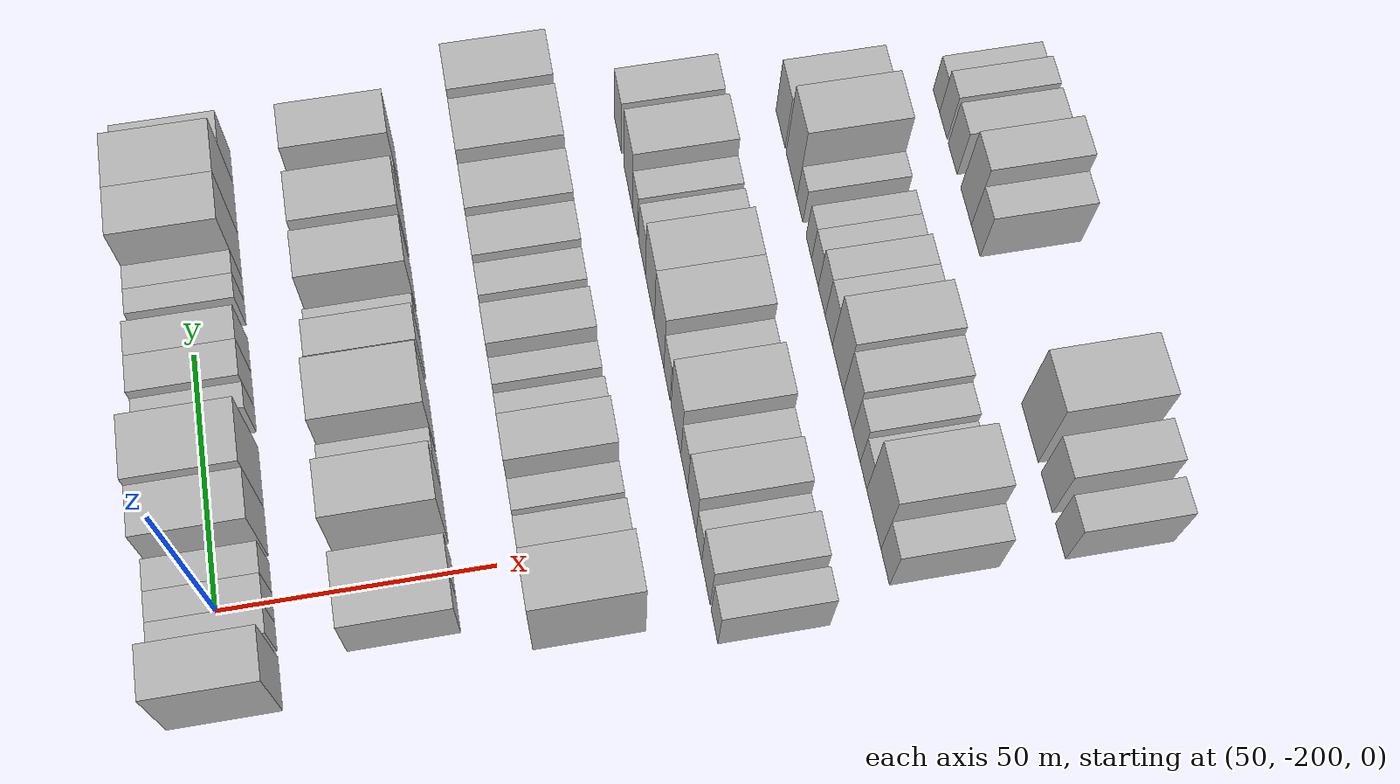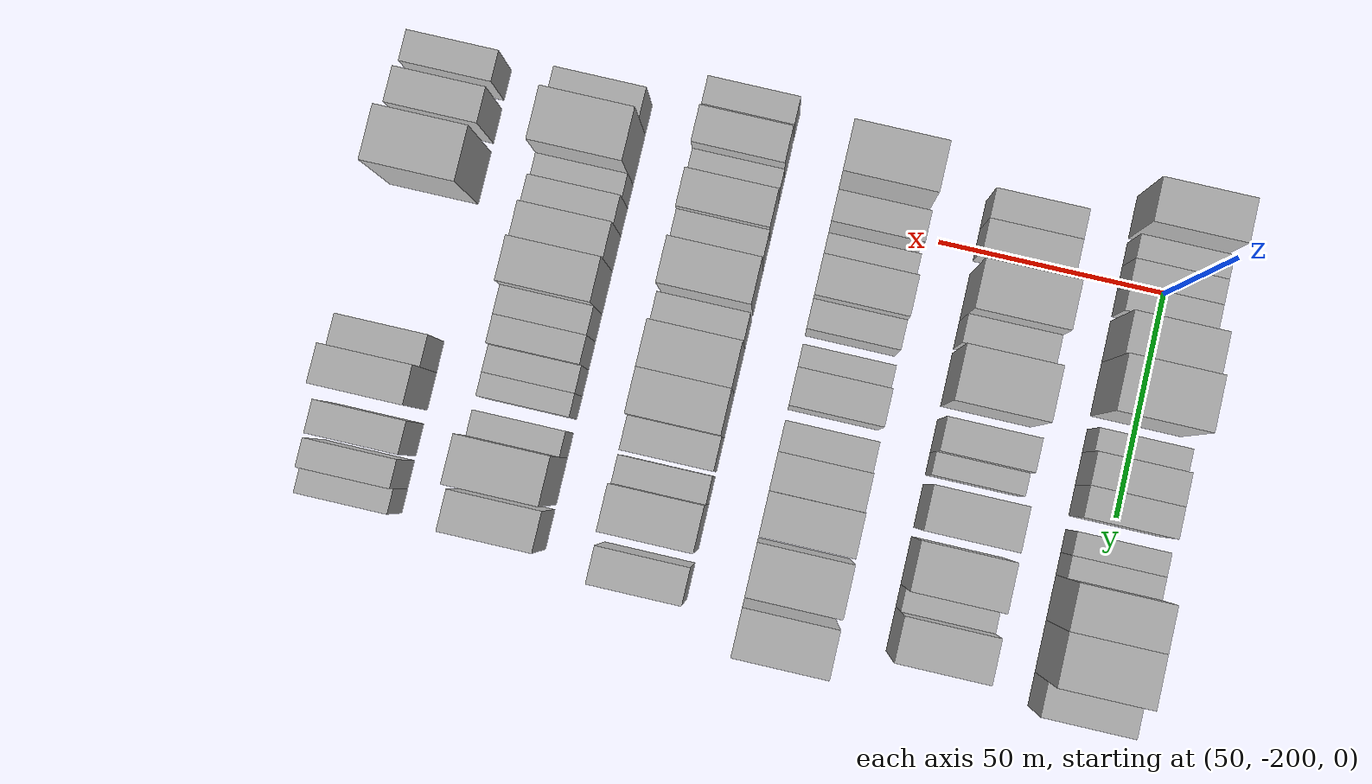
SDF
<sdf version="1.6">
 <world name="default">
  <model name="building_37">
   <static>1</static>
   <pose>50.0000 -214.8943 0 0.000000 0.000000 0.000000</pose>
   <link name="link">
    <pose>0 0 10.50 0 0 0</pose>
    <collision name="collision"><geometry><box><size>20.0000 9.5224 21.0000</size></box></geometry></collision>
    <visual name="visual">
     <cast_shadows>0</cast_shadows>
     <geometry><box><size>20.0000 9.5224 21.0000</size></box></geometry>
     <material>
      <script>
       <uri>model://HANNAS_wall/materials/scripts</uri>
       <uri>model://HANNAS_wall/materials/textures</uri>
       <name>vrc/HANNAS_wall</name>
      </script>
     </material>
    </visual>
   </link>
  </model>
  <model name="building_38">
   <static>1</static>
   <pose>50.0000 -206.4930 0 0.000000 0.000000 0.000000</pose>
   <link name="link">
    <pose>0 0 6.00 0 0 0</pose>
    <collision name="collision"><geometry><box><size>20.0000 5.2804 12.0000</size></box></geometry></collision>
    <visual name="visual">
     <cast_shadows>0</cast_shadows>
     <geometry><box><size>20.0000 5.2804 12.0000</size></box></geometry>
     <material>
      <script>
       <uri>model://HANNAS_wall/materials/scripts</uri>
       <uri>model://HANNAS_wall/materials/textures</uri>
       <name>vrc/HANNAS_wall</name>
      </script>
     </material>
    </visual>
   </link>
  </model>
  <model name="building_39">
   <static>1</static>
   <pose>50.0000 -201.1002 0 0.000000 0.000000 0.000000</pose>
   <link name="link">
    <pose>0 0 6.00 0 0 0</pose>
    <collision name="collision"><geometry><box><size>20.0000 5.5051 12.0000</size></box></geometry></collision>
    <visual name="visual">
     <cast_shadows>0</cast_shadows>
     <geometry><box><size>20.0000 5.5051 12.0000</size></box></geometry>
     <material>
      <script>
       <uri>model://HANNAS_wall/materials/scripts</uri>
       <uri>model://HANNAS_wall/materials/textures</uri>
       <name>vrc/HANNAS_wall</name>
      </script>
     </material>
    </visual>
   </link>
  </model>
  <model name="building_40">
   <static>1</static>
   <pose>50.0000 -195.4446 0 0.000000 0.000000 0.000000</pose>
   <link name="link">
    <pose>0 0 6.00 0 0 0</pose>
    <collision name="collision"><geometry><box><size>20.0000 5.8062 12.0000</size></box></geometry></collision>
    <visual name="visual">
     <cast_shadows>0</cast_shadows>
     <geometry><box><size>20.0000 5.8062 12.0000</size></box></geometry>
     <material>
      <script>
       <uri>model://HANNAS_wall/materials/scripts</uri>
       <uri>model://HANNAS_wall/materials/textures</uri>
       <name>vrc/HANNAS_wall</name>
      </script>
     </material>
    </visual>
   </link>
  </model>
  <model name="building_41">
   <static>1</static>
   <pose>50.0000 -186.9145 0 0.000000 0.000000 0.000000</pose>
   <link name="link">
    <pose>0 0 10.50 0 0 0</pose>
    <collision name="collision"><geometry><box><size>20.0000 9.2540 21.0000</size></box></geometry></collision>
    <visual name="visual">
     <cast_shadows>0</cast_shadows>
     <geometry><box><size>20.0000 9.2540 21.0000</size></box></geometry>
     <material>
      <script>
       <uri>model://HANNAS_wall/materials/scripts</uri>
       <uri>model://HANNAS_wall/materials/textures</uri>
       <name>vrc/HANNAS_wall</name>
      </script>
     </material>
    </visual>
   </link>
  </model>
  <model name="building_42">
   <static>1</static>
   <pose>50.0000 -176.3388 0 0.000000 0.000000 0.000000</pose>
   <link name="link">
    <pose>0 0 12.00 0 0 0</pose>
    <collision name="collision"><geometry><box><size>20.0000 11.8974 24.0000</size></box></geometry></collision>
    <visual name="visual">
     <cast_shadows>0</cast_shadows>
     <geometry><box><size>20.0000 11.8974 24.0000</size></box></geometry>
     <material>
      <script>
       <uri>model://HANNAS_wall/materials/scripts</uri>
       <uri>model://HANNAS_wall/materials/textures</uri>
       <name>vrc/HANNAS_wall</name>
      </script>
     </material>
    </visual>
   </link>
  </model>
  <model name="building_43">
   <static>1</static>
   <pose>50.0000 -164.8560 0 0.000000 0.000000 0.000000</pose>
   <link name="link">
    <pose>0 0 6.00 0 0 0</pose>
    <collision name="collision"><geometry><box><size>20.0000 5.0682 12.0000</size></box></geometry></collision>
    <visual name="visual">
     <cast_shadows>0</cast_shadows>
     <geometry><box><size>20.0000 5.0682 12.0000</size></box></geometry>
     <material>
      <script>
       <uri>model://HANNAS_wall/materials/scripts</uri>
       <uri>model://HANNAS_wall/materials/textures</uri>
       <name>vrc/HANNAS_wall</name>
      </script>
     </material>
    </visual>
   </link>
  </model>
  <model name="building_44">
   <static>1</static>
   <pose>50.0000 -158.7269 0 0.000000 0.000000 0.000000</pose>
   <link name="link">
    <pose>0 0 7.50 0 0 0</pose>
    <collision name="collision"><geometry><box><size>20.0000 7.1901 15.0000</size></box></geometry></collision>
    <visual name="visual">
     <cast_shadows>0</cast_shadows>
     <geometry><box><size>20.0000 7.1901 15.0000</size></box></geometry>
     <material>
      <script>
       <uri>model://HANNAS_wall/materials/scripts</uri>
       <uri>model://HANNAS_wall/materials/textures</uri>
       <name>vrc/HANNAS_wall</name>
      </script>
     </material>
    </visual>
   </link>
  </model>
  <model name="building_45">
   <static>1</static>
   <pose>50.0000 -151.7324 0 0.000000 0.000000 0.000000</pose>
   <link name="link">
    <pose>0 0 7.50 0 0 0</pose>
    <collision name="collision"><geometry><box><size>20.0000 6.7988 15.0000</size></box></geometry></collision>
    <visual name="visual">
     <cast_shadows>0</cast_shadows>
     <geometry><box><size>20.0000 6.7988 15.0000</size></box></geometry>
     <material>
      <script>
       <uri>model://HANNAS_wall/materials/scripts</uri>
       <uri>model://HANNAS_wall/materials/textures</uri>
       <name>vrc/HANNAS_wall</name>
      </script>
     </material>
    </visual>
   </link>
  </model>
  <model name="building_46">
   <static>1</static>
   <pose>50.0000 -142.8013 0 0.000000 0.000000 0.000000</pose>
   <link name="link">
    <pose>0 0 6.00 0 0 0</pose>
    <collision name="collision"><geometry><box><size>20.0000 5.0636 12.0000</size></box></geometry></collision>
    <visual name="visual">
     <cast_shadows>0</cast_shadows>
     <geometry><box><size>20.0000 5.0636 12.0000</size></box></geometry>
     <material>
      <script>
       <uri>model://HANNAS_wall/materials/scripts</uri>
       <uri>model://HANNAS_wall/materials/textures</uri>
       <name>vrc/HANNAS_wall</name>
      </script>
     </material>
    </visual>
   </link>
  </model>
  <model name="building_47">
   <static>1</static>
   <pose>50.0000 -137.8355 0 0.000000 0.000000 0.000000</pose>
   <link name="link">
    <pose>0 0 6.00 0 0 0</pose>
    <collision name="collision"><geometry><box><size>20.0000 4.8679 12.0000</size></box></geometry></collision>
    <visual name="visual">
     <cast_shadows>0</cast_shadows>
     <geometry><box><size>20.0000 4.8679 12.0000</size></box></geometry>
     <material>
      <script>
       <uri>model://HANNAS_wall/materials/scripts</uri>
       <uri>model://HANNAS_wall/materials/textures</uri>
       <name>vrc/HANNAS_wall</name>
      </script>
     </material>
    </visual>
   </link>
  </model>
  <model name="building_48">
   <static>1</static>
   <pose>50.0000 -130.4744 0 0.000000 0.000000 0.000000</pose>
   <link name="link">
    <pose>0 0 12.00 0 0 0</pose>
    <collision name="collision"><geometry><box><size>20.0000 9.8544 24.0000</size></box></geometry></collision>
    <visual name="visual">
     <cast_shadows>0</cast_shadows>
     <geometry><box><size>20.0000 9.8544 24.0000</size></box></geometry>
     <material>
      <script>
       <uri>model://HANNAS_wall/materials/scripts</uri>
       <uri>model://HANNAS_wall/materials/textures</uri>
       <name>vrc/HANNAS_wall</name>
      </script>
     </material>
    </visual>
   </link>
  </model>
  <model name="building_49">
   <static>1</static>
   <pose>50.0000 -119.8723 0 0.000000 0.000000 0.000000</pose>
   <link name="link">
    <pose>0 0 12.00 0 0 0</pose>
    <collision name="collision"><geometry><box><size>20.0000 11.3497 24.0000</size></box></geometry></collision>
    <visual name="visual">
     <cast_shadows>0</cast_shadows>
     <geometry><box><size>20.0000 11.3497 24.0000</size></box></geometry>
     <material>
      <script>
       <uri>model://HANNAS_wall/materials/scripts</uri>
       <uri>model://HANNAS_wall/materials/textures</uri>
       <name>vrc/HANNAS_wall</name>
      </script>
     </material>
    </visual>
   </link>
  </model>
  <model name="building_50">
   <static>1</static>
   <pose>50.0000 -110.5420 0 0.000000 0.000000 0.000000</pose>
   <link name="link">
    <pose>0 0 7.50 0 0 0</pose>
    <collision name="collision"><geometry><box><size>20.0000 7.3109 15.0000</size></box></geometry></collision>
    <visual name="visual">
     <cast_shadows>0</cast_shadows>
     <geometry><box><size>20.0000 7.3109 15.0000</size></box></geometry>
     <material>
      <script>
       <uri>model://HANNAS_wall/materials/scripts</uri>
       <uri>model://HANNAS_wall/materials/textures</uri>
       <name>vrc/HANNAS_wall</name>
      </script>
     </material>
    </visual>
   </link>
  </model>
  <model name="building_157">
   <static>1</static>
   <pose>82.0000 -207.8994 0 0.000000 0.000000 0.000000</pose>
   <link name="link">
    <pose>0 0 7.50 0 0 0</pose>
    <collision name="collision"><geometry><box><size>20.0000 6.5190 15.0000</size></box></geometry></collision>
    <visual name="visual">
     <cast_shadows>0</cast_shadows>
     <geometry><box><size>20.0000 6.5190 15.0000</size></box></geometry>
     <material>
      <script>
       <uri>model://HANNAS_wall/materials/scripts</uri>
       <uri>model://HANNAS_wall/materials/textures</uri>
       <name>vrc/HANNAS_wall</name>
      </script>
     </material>
    </visual>
   </link>
  </model>
  <model name="building_158">
   <static>1</static>
   <pose>82.0000 -201.1374 0 0.000000 0.000000 0.000000</pose>
   <link name="link">
    <pose>0 0 7.50 0 0 0</pose>
    <collision name="collision"><geometry><box><size>20.0000 7.0049 15.0000</size></box></geometry></collision>
    <visual name="visual">
     <cast_shadows>0</cast_shadows>
     <geometry><box><size>20.0000 7.0049 15.0000</size></box></geometry>
     <material>
      <script>
       <uri>model://HANNAS_wall/materials/scripts</uri>
       <uri>model://HANNAS_wall/materials/textures</uri>
       <name>vrc/HANNAS_wall</name>
      </script>
     </material>
    </visual>
   </link>
  </model>
  <model name="building_159">
   <static>1</static>
   <pose>82.0000 -189.3697 0 0.000000 0.000000 0.000000</pose>
   <link name="link">
    <pose>0 0 12.00 0 0 0</pose>
    <collision name="collision"><geometry><box><size>20.0000 10.5306 24.0000</size></box></geometry></collision>
    <visual name="visual">
     <cast_shadows>0</cast_shadows>
     <geometry><box><size>20.0000 10.5306 24.0000</size></box></geometry>
     <material>
      <script>
       <uri>model://HANNAS_wall/materials/scripts</uri>
       <uri>model://HANNAS_wall/materials/textures</uri>
       <name>vrc/HANNAS_wall</name>
      </script>
     </material>
    </visual>
   </link>
  </model>
  <model name="building_160">
   <static>1</static>
   <pose>82.0000 -180.9918 0 0.000000 0.000000 0.000000</pose>
   <link name="link">
    <pose>0 0 7.50 0 0 0</pose>
    <collision name="collision"><geometry><box><size>20.0000 6.2252 15.0000</size></box></geometry></collision>
    <visual name="visual">
     <cast_shadows>0</cast_shadows>
     <geometry><box><size>20.0000 6.2252 15.0000</size></box></geometry>
     <material>
      <script>
       <uri>model://HANNAS_wall/materials/scripts</uri>
       <uri>model://HANNAS_wall/materials/textures</uri>
       <name>vrc/HANNAS_wall</name>
      </script>
     </material>
    </visual>
   </link>
  </model>
  <model name="building_161">
   <static>1</static>
   <pose>82.0000 -171.0031 0 0.000000 0.000000 0.000000</pose>
   <link name="link">
    <pose>0 0 12.00 0 0 0</pose>
    <collision name="collision"><geometry><box><size>20.0000 11.7522 24.0000</size></box></geometry></collision>
    <visual name="visual">
     <cast_shadows>0</cast_shadows>
     <geometry><box><size>20.0000 11.7522 24.0000</size></box></geometry>
     <material>
      <script>
       <uri>model://HANNAS_wall/materials/scripts</uri>
       <uri>model://HANNAS_wall/materials/textures</uri>
       <name>vrc/HANNAS_wall</name>
      </script>
     </material>
    </visual>
   </link>
  </model>
  <model name="building_162">
   <static>1</static>
   <pose>82.0000 -158.5071 0 0.000000 0.000000 0.000000</pose>
   <link name="link">
    <pose>0 0 9.00 0 0 0</pose>
    <collision name="collision"><geometry><box><size>20.0000 7.2398 18.0000</size></box></geometry></collision>
    <visual name="visual">
     <cast_shadows>0</cast_shadows>
     <geometry><box><size>20.0000 7.2398 18.0000</size></box></geometry>
     <material>
      <script>
       <uri>model://HANNAS_wall/materials/scripts</uri>
       <uri>model://HANNAS_wall/materials/textures</uri>
       <name>vrc/HANNAS_wall</name>
      </script>
     </material>
    </visual>
   </link>
  </model>
  <model name="building_163">
   <static>1</static>
   <pose>82.0000 -152.3993 0 0.000000 0.000000 0.000000</pose>
   <link name="link">
    <pose>0 0 6.00 0 0 0</pose>
    <collision name="collision"><geometry><box><size>20.0000 4.9757 12.0000</size></box></geometry></collision>
    <visual name="visual">
     <cast_shadows>0</cast_shadows>
     <geometry><box><size>20.0000 4.9757 12.0000</size></box></geometry>
     <material>
      <script>
       <uri>model://HANNAS_wall/materials/scripts</uri>
       <uri>model://HANNAS_wall/materials/textures</uri>
       <name>vrc/HANNAS_wall</name>
      </script>
     </material>
    </visual>
   </link>
  </model>
  <model name="building_164">
   <static>1</static>
   <pose>82.0000 -143.1555 0 0.000000 0.000000 0.000000</pose>
   <link name="link">
    <pose>0 0 10.50 0 0 0</pose>
    <collision name="collision"><geometry><box><size>20.0000 9.5119 21.0000</size></box></geometry></collision>
    <visual name="visual">
     <cast_shadows>0</cast_shadows>
     <geometry><box><size>20.0000 9.5119 21.0000</size></box></geometry>
     <material>
      <script>
       <uri>model://HANNAS_wall/materials/scripts</uri>
       <uri>model://HANNAS_wall/materials/textures</uri>
       <name>vrc/HANNAS_wall</name>
      </script>
     </material>
    </visual>
   </link>
  </model>
  <model name="building_165">
   <static>1</static>
   <pose>82.0000 -131.1822 0 0.000000 0.000000 0.000000</pose>
   <link name="link">
    <pose>0 0 10.50 0 0 0</pose>
    <collision name="collision"><geometry><box><size>20.0000 10.4346 21.0000</size></box></geometry></collision>
    <visual name="visual">
     <cast_shadows>0</cast_shadows>
     <geometry><box><size>20.0000 10.4346 21.0000</size></box></geometry>
     <material>
      <script>
       <uri>model://HANNAS_wall/materials/scripts</uri>
       <uri>model://HANNAS_wall/materials/textures</uri>
       <name>vrc/HANNAS_wall</name>
      </script>
     </material>
    </visual>
   </link>
  </model>
  <model name="building_166">
   <static>1</static>
   <pose>82.0000 -123.4784 0 0.000000 0.000000 0.000000</pose>
   <link name="link">
    <pose>0 0 6.00 0 0 0</pose>
    <collision name="collision"><geometry><box><size>20.0000 4.9730 12.0000</size></box></geometry></collision>
    <visual name="visual">
     <cast_shadows>0</cast_shadows>
     <geometry><box><size>20.0000 4.9730 12.0000</size></box></geometry>
     <material>
      <script>
       <uri>model://HANNAS_wall/materials/scripts</uri>
       <uri>model://HANNAS_wall/materials/textures</uri>
       <name>vrc/HANNAS_wall</name>
      </script>
     </material>
    </visual>
   </link>
  </model>
  <model name="building_167">
   <static>1</static>
   <pose>82.0000 -116.2083 0 0.000000 0.000000 0.000000</pose>
   <link name="link">
    <pose>0 0 10.50 0 0 0</pose>
    <collision name="collision"><geometry><box><size>20.0000 9.5671 21.0000</size></box></geometry></collision>
    <visual name="visual">
     <cast_shadows>0</cast_shadows>
     <geometry><box><size>20.0000 9.5671 21.0000</size></box></geometry>
     <material>
      <script>
       <uri>model://HANNAS_wall/materials/scripts</uri>
       <uri>model://HANNAS_wall/materials/textures</uri>
       <name>vrc/HANNAS_wall</name>
      </script>
     </material>
    </visual>
   </link>
  </model>
  <model name="building_272">
   <static>1</static>
   <pose>114.0000 -210.8963 0 0.000000 0.000000 0.000000</pose>
   <link name="link">
    <pose>0 0 12.00 0 0 0</pose>
    <collision name="collision"><geometry><box><size>20.0000 10.9202 24.0000</size></box></geometry></collision>
    <visual name="visual">
     <cast_shadows>0</cast_shadows>
     <geometry><box><size>20.0000 10.9202 24.0000</size></box></geometry>
     <material>
      <script>
       <uri>model://HANNAS_wall/materials/scripts</uri>
       <uri>model://HANNAS_wall/materials/textures</uri>
       <name>vrc/HANNAS_wall</name>
      </script>
     </material>
    </visual>
   </link>
  </model>
  <model name="building_273">
   <static>1</static>
   <pose>114.0000 -200.0163 0 0.000000 0.000000 0.000000</pose>
   <link name="link">
    <pose>0 0 7.50 0 0 0</pose>
    <collision name="collision"><geometry><box><size>20.0000 6.8398 15.0000</size></box></geometry></collision>
    <visual name="visual">
     <cast_shadows>0</cast_shadows>
     <geometry><box><size>20.0000 6.8398 15.0000</size></box></geometry>
     <material>
      <script>
       <uri>model://HANNAS_wall/materials/scripts</uri>
       <uri>model://HANNAS_wall/materials/textures</uri>
       <name>vrc/HANNAS_wall</name>
      </script>
     </material>
    </visual>
   </link>
  </model>
  <model name="building_274">
   <static>1</static>
   <pose>114.0000 -191.6245 0 0.000000 0.000000 0.000000</pose>
   <link name="link">
    <pose>0 0 6.00 0 0 0</pose>
    <collision name="collision"><geometry><box><size>20.0000 5.9437 12.0000</size></box></geometry></collision>
    <visual name="visual">
     <cast_shadows>0</cast_shadows>
     <geometry><box><size>20.0000 5.9437 12.0000</size></box></geometry>
     <material>
      <script>
       <uri>model://HANNAS_wall/materials/scripts</uri>
       <uri>model://HANNAS_wall/materials/textures</uri>
       <name>vrc/HANNAS_wall</name>
      </script>
     </material>
    </visual>
   </link>
  </model>
  <model name="building_275">
   <static>1</static>
   <pose>114.0000 -184.2922 0 0.000000 0.000000 0.000000</pose>
   <link name="link">
    <pose>0 0 10.50 0 0 0</pose>
    <collision name="collision"><geometry><box><size>20.0000 8.7209 21.0000</size></box></geometry></collision>
    <visual name="visual">
     <cast_shadows>0</cast_shadows>
     <geometry><box><size>20.0000 8.7209 21.0000</size></box></geometry>
     <material>
      <script>
       <uri>model://HANNAS_wall/materials/scripts</uri>
       <uri>model://HANNAS_wall/materials/textures</uri>
       <name>vrc/HANNAS_wall</name>
      </script>
     </material>
    </visual>
   </link>
  </model>
  <model name="building_276">
   <static>1</static>
   <pose>114.0000 -176.7101 0 0.000000 0.000000 0.000000</pose>
   <link name="link">
    <pose>0 0 7.50 0 0 0</pose>
    <collision name="collision"><geometry><box><size>20.0000 6.4432 15.0000</size></box></geometry></collision>
    <visual name="visual">
     <cast_shadows>0</cast_shadows>
     <geometry><box><size>20.0000 6.4432 15.0000</size></box></geometry>
     <material>
      <script>
       <uri>model://HANNAS_wall/materials/scripts</uri>
       <uri>model://HANNAS_wall/materials/textures</uri>
       <name>vrc/HANNAS_wall</name>
      </script>
     </material>
    </visual>
   </link>
  </model>
  <model name="building_277">
   <static>1</static>
   <pose>114.0000 -167.8141 0 0.000000 0.000000 0.000000</pose>
   <link name="link">
    <pose>0 0 6.00 0 0 0</pose>
    <collision name="collision"><geometry><box><size>20.0000 5.3487 12.0000</size></box></geometry></collision>
    <visual name="visual">
     <cast_shadows>0</cast_shadows>
     <geometry><box><size>20.0000 5.3487 12.0000</size></box></geometry>
     <material>
      <script>
       <uri>model://HANNAS_wall/materials/scripts</uri>
       <uri>model://HANNAS_wall/materials/textures</uri>
       <name>vrc/HANNAS_wall</name>
      </script>
     </material>
    </visual>
   </link>
  </model>
  <model name="building_278">
   <static>1</static>
   <pose>114.0000 -161.0868 0 0.000000 0.000000 0.000000</pose>
   <link name="link">
    <pose>0 0 9.00 0 0 0</pose>
    <collision name="collision"><geometry><box><size>20.0000 8.1060 18.0000</size></box></geometry></collision>
    <visual name="visual">
     <cast_shadows>0</cast_shadows>
     <geometry><box><size>20.0000 8.1060 18.0000</size></box></geometry>
     <material>
      <script>
       <uri>model://HANNAS_wall/materials/scripts</uri>
       <uri>model://HANNAS_wall/materials/textures</uri>
       <name>vrc/HANNAS_wall</name>
      </script>
     </material>
    </visual>
   </link>
  </model>
  <model name="building_279">
   <static>1</static>
   <pose>114.0000 -150.7068 0 0.000000 0.000000 0.000000</pose>
   <link name="link">
    <pose>0 0 7.50 0 0 0</pose>
    <collision name="collision"><geometry><box><size>20.0000 6.6540 15.0000</size></box></geometry></collision>
    <visual name="visual">
     <cast_shadows>0</cast_shadows>
     <geometry><box><size>20.0000 6.6540 15.0000</size></box></geometry>
     <material>
      <script>
       <uri>model://HANNAS_wall/materials/scripts</uri>
       <uri>model://HANNAS_wall/materials/textures</uri>
       <name>vrc/HANNAS_wall</name>
      </script>
     </material>
    </visual>
   </link>
  </model>
  <model name="building_280">
   <static>1</static>
   <pose>114.0000 -143.2969 0 0.000000 0.000000 0.000000</pose>
   <link name="link">
    <pose>0 0 9.00 0 0 0</pose>
    <collision name="collision"><geometry><box><size>20.0000 8.1658 18.0000</size></box></geometry></collision>
    <visual name="visual">
     <cast_shadows>0</cast_shadows>
     <geometry><box><size>20.0000 8.1658 18.0000</size></box></geometry>
     <material>
      <script>
       <uri>model://HANNAS_wall/materials/scripts</uri>
       <uri>model://HANNAS_wall/materials/textures</uri>
       <name>vrc/HANNAS_wall</name>
      </script>
     </material>
    </visual>
   </link>
  </model>
  <model name="building_281">
   <static>1</static>
   <pose>114.0000 -134.4871 0 0.000000 0.000000 0.000000</pose>
   <link name="link">
    <pose>0 0 10.50 0 0 0</pose>
    <collision name="collision"><geometry><box><size>20.0000 9.4538 21.0000</size></box></geometry></collision>
    <visual name="visual">
     <cast_shadows>0</cast_shadows>
     <geometry><box><size>20.0000 9.4538 21.0000</size></box></geometry>
     <material>
      <script>
       <uri>model://HANNAS_wall/materials/scripts</uri>
       <uri>model://HANNAS_wall/materials/textures</uri>
       <name>vrc/HANNAS_wall</name>
      </script>
     </material>
    </visual>
   </link>
  </model>
  <model name="building_282">
   <static>1</static>
   <pose>114.0000 -123.1854 0 0.000000 0.000000 0.000000</pose>
   <link name="link">
    <pose>0 0 12.00 0 0 0</pose>
    <collision name="collision"><geometry><box><size>20.0000 11.1496 24.0000</size></box></geometry></collision>
    <visual name="visual">
     <cast_shadows>0</cast_shadows>
     <geometry><box><size>20.0000 11.1496 24.0000</size></box></geometry>
     <material>
      <script>
       <uri>model://HANNAS_wall/materials/scripts</uri>
       <uri>model://HANNAS_wall/materials/textures</uri>
       <name>vrc/HANNAS_wall</name>
      </script>
     </material>
    </visual>
   </link>
  </model>
  <model name="building_283">
   <static>1</static>
   <pose>114.0000 -110.5308 0 0.000000 0.000000 0.000000</pose>
   <link name="link">
    <pose>0 0 12.00 0 0 0</pose>
    <collision name="collision"><geometry><box><size>20.0000 10.1595 24.0000</size></box></geometry></collision>
    <visual name="visual">
     <cast_shadows>0</cast_shadows>
     <geometry><box><size>20.0000 10.1595 24.0000</size></box></geometry>
     <material>
      <script>
       <uri>model://HANNAS_wall/materials/scripts</uri>
       <uri>model://HANNAS_wall/materials/textures</uri>
       <name>vrc/HANNAS_wall</name>
      </script>
     </material>
    </visual>
   </link>
  </model>
  <model name="building_393">
   <static>1</static>
   <pose>146.0000 -217.6909 0 0.000000 0.000000 0.000000</pose>
   <link name="link">
    <pose>0 0 7.50 0 0 0</pose>
    <collision name="collision"><geometry><box><size>20.0000 6.1192 15.0000</size></box></geometry></collision>
    <visual name="visual">
     <cast_shadows>0</cast_shadows>
     <geometry><box><size>20.0000 6.1192 15.0000</size></box></geometry>
     <material>
      <script>
       <uri>model://HANNAS_wall/materials/scripts</uri>
       <uri>model://HANNAS_wall/materials/textures</uri>
       <name>vrc/HANNAS_wall</name>
      </script>
     </material>
    </visual>
   </link>
  </model>
  <model name="building_394">
   <static>1</static>
   <pose>146.0000 -209.6359 0 0.000000 0.000000 0.000000</pose>
   <link name="link">
    <pose>0 0 9.00 0 0 0</pose>
    <collision name="collision"><geometry><box><size>20.0000 7.9907 18.0000</size></box></geometry></collision>
    <visual name="visual">
     <cast_shadows>0</cast_shadows>
     <geometry><box><size>20.0000 7.9907 18.0000</size></box></geometry>
     <material>
      <script>
       <uri>model://HANNAS_wall/materials/scripts</uri>
       <uri>model://HANNAS_wall/materials/textures</uri>
       <name>vrc/HANNAS_wall</name>
      </script>
     </material>
    </visual>
   </link>
  </model>
  <model name="building_395">
   <static>1</static>
   <pose>146.0000 -202.9031 0 0.000000 0.000000 0.000000</pose>
   <link name="link">
    <pose>0 0 6.00 0 0 0</pose>
    <collision name="collision"><geometry><box><size>20.0000 5.4749 12.0000</size></box></geometry></collision>
    <visual name="visual">
     <cast_shadows>0</cast_shadows>
     <geometry><box><size>20.0000 5.4749 12.0000</size></box></geometry>
     <material>
      <script>
       <uri>model://HANNAS_wall/materials/scripts</uri>
       <uri>model://HANNAS_wall/materials/textures</uri>
       <name>vrc/HANNAS_wall</name>
      </script>
     </material>
    </visual>
   </link>
  </model>
  <model name="building_396">
   <static>1</static>
   <pose>146.0000 -196.0017 0 0.000000 0.000000 0.000000</pose>
   <link name="link">
    <pose>0 0 9.00 0 0 0</pose>
    <collision name="collision"><geometry><box><size>20.0000 8.3280 18.0000</size></box></geometry></collision>
    <visual name="visual">
     <cast_shadows>0</cast_shadows>
     <geometry><box><size>20.0000 8.3280 18.0000</size></box></geometry>
     <material>
      <script>
       <uri>model://HANNAS_wall/materials/scripts</uri>
       <uri>model://HANNAS_wall/materials/textures</uri>
       <name>vrc/HANNAS_wall</name>
      </script>
     </material>
    </visual>
   </link>
  </model>
  <model name="building_397">
   <static>1</static>
   <pose>146.0000 -188.4555 0 0.000000 0.000000 0.000000</pose>
   <link name="link">
    <pose>0 0 7.50 0 0 0</pose>
    <collision name="collision"><geometry><box><size>20.0000 6.7644 15.0000</size></box></geometry></collision>
    <visual name="visual">
     <cast_shadows>0</cast_shadows>
     <geometry><box><size>20.0000 6.7644 15.0000</size></box></geometry>
     <material>
      <script>
       <uri>model://HANNAS_wall/materials/scripts</uri>
       <uri>model://HANNAS_wall/materials/textures</uri>
       <name>vrc/HANNAS_wall</name>
      </script>
     </material>
    </visual>
   </link>
  </model>
  <model name="building_398">
   <static>1</static>
   <pose>146.0000 -180.0820 0 0.000000 0.000000 0.000000</pose>
   <link name="link">
    <pose>0 0 10.50 0 0 0</pose>
    <collision name="collision"><geometry><box><size>20.0000 9.9826 21.0000</size></box></geometry></collision>
    <visual name="visual">
     <cast_shadows>0</cast_shadows>
     <geometry><box><size>20.0000 9.9826 21.0000</size></box></geometry>
     <material>
      <script>
       <uri>model://HANNAS_wall/materials/scripts</uri>
       <uri>model://HANNAS_wall/materials/textures</uri>
       <name>vrc/HANNAS_wall</name>
      </script>
     </material>
    </visual>
   </link>
  </model>
  <model name="building_399">
   <static>1</static>
   <pose>146.0000 -170.8248 0 0.000000 0.000000 0.000000</pose>
   <link name="link">
    <pose>0 0 7.50 0 0 0</pose>
    <collision name="collision"><geometry><box><size>20.0000 6.5318 15.0000</size></box></geometry></collision>
    <visual name="visual">
     <cast_shadows>0</cast_shadows>
     <geometry><box><size>20.0000 6.5318 15.0000</size></box></geometry>
     <material>
      <script>
       <uri>model://HANNAS_wall/materials/scripts</uri>
       <uri>model://HANNAS_wall/materials/textures</uri>
       <name>vrc/HANNAS_wall</name>
      </script>
     </material>
    </visual>
   </link>
  </model>
  <model name="building_400">
   <static>1</static>
   <pose>146.0000 -162.5661 0 0.000000 0.000000 0.000000</pose>
   <link name="link">
    <pose>0 0 10.50 0 0 0</pose>
    <collision name="collision"><geometry><box><size>20.0000 9.9856 21.0000</size></box></geometry></collision>
    <visual name="visual">
     <cast_shadows>0</cast_shadows>
     <geometry><box><size>20.0000 9.9856 21.0000</size></box></geometry>
     <material>
      <script>
       <uri>model://HANNAS_wall/materials/scripts</uri>
       <uri>model://HANNAS_wall/materials/textures</uri>
       <name>vrc/HANNAS_wall</name>
      </script>
     </material>
    </visual>
   </link>
  </model>
  <model name="building_401">
   <static>1</static>
   <pose>146.0000 -152.6809 0 0.000000 0.000000 0.000000</pose>
   <link name="link">
    <pose>0 0 10.50 0 0 0</pose>
    <collision name="collision"><geometry><box><size>20.0000 9.7848 21.0000</size></box></geometry></collision>
    <visual name="visual">
     <cast_shadows>0</cast_shadows>
     <geometry><box><size>20.0000 9.7848 21.0000</size></box></geometry>
     <material>
      <script>
       <uri>model://HANNAS_wall/materials/scripts</uri>
       <uri>model://HANNAS_wall/materials/textures</uri>
       <name>vrc/HANNAS_wall</name>
      </script>
     </material>
    </visual>
   </link>
  </model>
  <model name="building_402">
   <static>1</static>
   <pose>146.0000 -144.0945 0 0.000000 0.000000 0.000000</pose>
   <link name="link">
    <pose>0 0 7.50 0 0 0</pose>
    <collision name="collision"><geometry><box><size>20.0000 7.3880 15.0000</size></box></geometry></collision>
    <visual name="visual">
     <cast_shadows>0</cast_shadows>
     <geometry><box><size>20.0000 7.3880 15.0000</size></box></geometry>
     <material>
      <script>
       <uri>model://HANNAS_wall/materials/scripts</uri>
       <uri>model://HANNAS_wall/materials/textures</uri>
       <name>vrc/HANNAS_wall</name>
      </script>
     </material>
    </visual>
   </link>
  </model>
  <model name="building_403">
   <static>1</static>
   <pose>146.0000 -136.3829 0 0.000000 0.000000 0.000000</pose>
   <link name="link">
    <pose>0 0 7.50 0 0 0</pose>
    <collision name="collision"><geometry><box><size>20.0000 6.0352 15.0000</size></box></geometry></collision>
    <visual name="visual">
     <cast_shadows>0</cast_shadows>
     <geometry><box><size>20.0000 6.0352 15.0000</size></box></geometry>
     <material>
      <script>
       <uri>model://HANNAS_wall/materials/scripts</uri>
       <uri>model://HANNAS_wall/materials/textures</uri>
       <name>vrc/HANNAS_wall</name>
      </script>
     </material>
    </visual>
   </link>
  </model>
  <model name="building_404">
   <static>1</static>
   <pose>146.0000 -128.4066 0 0.000000 0.000000 0.000000</pose>
   <link name="link">
    <pose>0 0 10.50 0 0 0</pose>
    <collision name="collision"><geometry><box><size>20.0000 9.9174 21.0000</size></box></geometry></collision>
    <visual name="visual">
     <cast_shadows>0</cast_shadows>
     <geometry><box><size>20.0000 9.9174 21.0000</size></box></geometry>
     <material>
      <script>
       <uri>model://HANNAS_wall/materials/scripts</uri>
       <uri>model://HANNAS_wall/materials/textures</uri>
       <name>vrc/HANNAS_wall</name>
      </script>
     </material>
    </visual>
   </link>
  </model>
  <model name="building_405">
   <static>1</static>
   <pose>146.0000 -116.4631 0 0.000000 0.000000 0.000000</pose>
   <link name="link">
    <pose>0 0 9.00 0 0 0</pose>
    <collision name="collision"><geometry><box><size>20.0000 7.9697 18.0000</size></box></geometry></collision>
    <visual name="visual">
     <cast_shadows>0</cast_shadows>
     <geometry><box><size>20.0000 7.9697 18.0000</size></box></geometry>
     <material>
      <script>
       <uri>model://HANNAS_wall/materials/scripts</uri>
       <uri>model://HANNAS_wall/materials/textures</uri>
       <name>vrc/HANNAS_wall</name>
      </script>
     </material>
    </visual>
   </link>
  </model>
  <model name="building_512">
   <static>1</static>
   <pose>178.0000 -212.0690 0 0.000000 0.000000 0.000000</pose>
   <link name="link">
    <pose>0 0 7.50 0 0 0</pose>
    <collision name="collision"><geometry><box><size>20.0000 6.7222 15.0000</size></box></geometry></collision>
    <visual name="visual">
     <cast_shadows>0</cast_shadows>
     <geometry><box><size>20.0000 6.7222 15.0000</size></box></geometry>
     <material>
      <script>
       <uri>model://HANNAS_wall/materials/scripts</uri>
       <uri>model://HANNAS_wall/materials/textures</uri>
       <name>vrc/HANNAS_wall</name>
      </script>
     </material>
    </visual>
   </link>
  </model>
  <model name="building_513">
   <static>1</static>
   <pose>178.0000 -202.9994 0 0.000000 0.000000 0.000000</pose>
   <link name="link">
    <pose>0 0 12.00 0 0 0</pose>
    <collision name="collision"><geometry><box><size>20.0000 11.4170 24.0000</size></box></geometry></collision>
    <visual name="visual">
     <cast_shadows>0</cast_shadows>
     <geometry><box><size>20.0000 11.4170 24.0000</size></box></geometry>
     <material>
      <script>
       <uri>model://HANNAS_wall/materials/scripts</uri>
       <uri>model://HANNAS_wall/materials/textures</uri>
       <name>vrc/HANNAS_wall</name>
      </script>
     </material>
    </visual>
   </link>
  </model>
  <model name="building_514">
   <static>1</static>
   <pose>178.0000 -194.6346 0 0.000000 0.000000 0.000000</pose>
   <link name="link">
    <pose>0 0 6.00 0 0 0</pose>
    <collision name="collision"><geometry><box><size>20.0000 5.3127 12.0000</size></box></geometry></collision>
    <visual name="visual">
     <cast_shadows>0</cast_shadows>
     <geometry><box><size>20.0000 5.3127 12.0000</size></box></geometry>
     <material>
      <script>
       <uri>model://HANNAS_wall/materials/scripts</uri>
       <uri>model://HANNAS_wall/materials/textures</uri>
       <name>vrc/HANNAS_wall</name>
      </script>
     </material>
    </visual>
   </link>
  </model>
  <model name="building_515">
   <static>1</static>
   <pose>178.0000 -188.8252 0 0.000000 0.000000 0.000000</pose>
   <link name="link">
    <pose>0 0 7.50 0 0 0</pose>
    <collision name="collision"><geometry><box><size>20.0000 6.3061 15.0000</size></box></geometry></collision>
    <visual name="visual">
     <cast_shadows>0</cast_shadows>
     <geometry><box><size>20.0000 6.3061 15.0000</size></box></geometry>
     <material>
      <script>
       <uri>model://HANNAS_wall/materials/scripts</uri>
       <uri>model://HANNAS_wall/materials/textures</uri>
       <name>vrc/HANNAS_wall</name>
      </script>
     </material>
    </visual>
   </link>
  </model>
  <model name="building_516">
   <static>1</static>
   <pose>178.0000 -181.7058 0 0.000000 0.000000 0.000000</pose>
   <link name="link">
    <pose>0 0 9.00 0 0 0</pose>
    <collision name="collision"><geometry><box><size>20.0000 7.9325 18.0000</size></box></geometry></collision>
    <visual name="visual">
     <cast_shadows>0</cast_shadows>
     <geometry><box><size>20.0000 7.9325 18.0000</size></box></geometry>
     <material>
      <script>
       <uri>model://HANNAS_wall/materials/scripts</uri>
       <uri>model://HANNAS_wall/materials/textures</uri>
       <name>vrc/HANNAS_wall</name>
      </script>
     </material>
    </visual>
   </link>
  </model>
  <model name="building_517">
   <static>1</static>
   <pose>178.0000 -172.9479 0 0.000000 0.000000 0.000000</pose>
   <link name="link">
    <pose>0 0 10.50 0 0 0</pose>
    <collision name="collision"><geometry><box><size>20.0000 9.5835 21.0000</size></box></geometry></collision>
    <visual name="visual">
     <cast_shadows>0</cast_shadows>
     <geometry><box><size>20.0000 9.5835 21.0000</size></box></geometry>
     <material>
      <script>
       <uri>model://HANNAS_wall/materials/scripts</uri>
       <uri>model://HANNAS_wall/materials/textures</uri>
       <name>vrc/HANNAS_wall</name>
      </script>
     </material>
    </visual>
   </link>
  </model>
  <model name="building_518">
   <static>1</static>
   <pose>178.0000 -165.0242 0 0.000000 0.000000 0.000000</pose>
   <link name="link">
    <pose>0 0 7.50 0 0 0</pose>
    <collision name="collision"><geometry><box><size>20.0000 6.2639 15.0000</size></box></geometry></collision>
    <visual name="visual">
     <cast_shadows>0</cast_shadows>
     <geometry><box><size>20.0000 6.2639 15.0000</size></box></geometry>
     <material>
      <script>
       <uri>model://HANNAS_wall/materials/scripts</uri>
       <uri>model://HANNAS_wall/materials/textures</uri>
       <name>vrc/HANNAS_wall</name>
      </script>
     </material>
    </visual>
   </link>
  </model>
  <model name="building_519">
   <static>1</static>
   <pose>178.0000 -158.7740 0 0.000000 0.000000 0.000000</pose>
   <link name="link">
    <pose>0 0 7.50 0 0 0</pose>
    <collision name="collision"><geometry><box><size>20.0000 6.2363 15.0000</size></box></geometry></collision>
    <visual name="visual">
     <cast_shadows>0</cast_shadows>
     <geometry><box><size>20.0000 6.2363 15.0000</size></box></geometry>
     <material>
      <script>
       <uri>model://HANNAS_wall/materials/scripts</uri>
       <uri>model://HANNAS_wall/materials/textures</uri>
       <name>vrc/HANNAS_wall</name>
      </script>
     </material>
    </visual>
   </link>
  </model>
  <model name="building_520">
   <static>1</static>
   <pose>178.0000 -152.6824 0 0.000000 0.000000 0.000000</pose>
   <link name="link">
    <pose>0 0 6.00 0 0 0</pose>
    <collision name="collision"><geometry><box><size>20.0000 5.9470 12.0000</size></box></geometry></collision>
    <visual name="visual">
     <cast_shadows>0</cast_shadows>
     <geometry><box><size>20.0000 5.9470 12.0000</size></box></geometry>
     <material>
      <script>
       <uri>model://HANNAS_wall/materials/scripts</uri>
       <uri>model://HANNAS_wall/materials/textures</uri>
       <name>vrc/HANNAS_wall</name>
      </script>
     </material>
    </visual>
   </link>
  </model>
  <model name="building_521">
   <static>1</static>
   <pose>178.0000 -147.1653 0 0.000000 0.000000 0.000000</pose>
   <link name="link">
    <pose>0 0 6.00 0 0 0</pose>
    <collision name="collision"><geometry><box><size>20.0000 5.0873 12.0000</size></box></geometry></collision>
    <visual name="visual">
     <cast_shadows>0</cast_shadows>
     <geometry><box><size>20.0000 5.0873 12.0000</size></box></geometry>
     <material>
      <script>
       <uri>model://HANNAS_wall/materials/scripts</uri>
       <uri>model://HANNAS_wall/materials/textures</uri>
       <name>vrc/HANNAS_wall</name>
      </script>
     </material>
    </visual>
   </link>
  </model>
  <model name="building_522">
   <static>1</static>
   <pose>178.0000 -138.8642 0 0.000000 0.000000 0.000000</pose>
   <link name="link">
    <pose>0 0 6.00 0 0 0</pose>
    <collision name="collision"><geometry><box><size>20.0000 5.5149 12.0000</size></box></geometry></collision>
    <visual name="visual">
     <cast_shadows>0</cast_shadows>
     <geometry><box><size>20.0000 5.5149 12.0000</size></box></geometry>
     <material>
      <script>
       <uri>model://HANNAS_wall/materials/scripts</uri>
       <uri>model://HANNAS_wall/materials/textures</uri>
       <name>vrc/HANNAS_wall</name>
      </script>
     </material>
    </visual>
   </link>
  </model>
  <model name="building_523">
   <static>1</static>
   <pose>178.0000 -130.9303 0 0.000000 0.000000 0.000000</pose>
   <link name="link">
    <pose>0 0 12.00 0 0 0</pose>
    <collision name="collision"><geometry><box><size>20.0000 10.3530 24.0000</size></box></geometry></collision>
    <visual name="visual">
     <cast_shadows>0</cast_shadows>
     <geometry><box><size>20.0000 10.3530 24.0000</size></box></geometry>
     <material>
      <script>
       <uri>model://HANNAS_wall/materials/scripts</uri>
       <uri>model://HANNAS_wall/materials/textures</uri>
       <name>vrc/HANNAS_wall</name>
      </script>
     </material>
    </visual>
   </link>
  </model>
  <model name="building_524">
   <static>1</static>
   <pose>178.0000 -120.3630 0 0.000000 0.000000 0.000000</pose>
   <link name="link">
    <pose>0 0 9.00 0 0 0</pose>
    <collision name="collision"><geometry><box><size>20.0000 8.7815 18.0000</size></box></geometry></collision>
    <visual name="visual">
     <cast_shadows>0</cast_shadows>
     <geometry><box><size>20.0000 8.7815 18.0000</size></box></geometry>
     <material>
      <script>
       <uri>model://HANNAS_wall/materials/scripts</uri>
       <uri>model://HANNAS_wall/materials/textures</uri>
       <name>vrc/HANNAS_wall</name>
      </script>
     </material>
    </visual>
   </link>
  </model>
  <model name="building_631">
   <static>1</static>
   <pose>210.0000 -212.6714 0 0.000000 0.000000 0.000000</pose>
   <link name="link">
    <pose>0 0 7.50 0 0 0</pose>
    <collision name="collision"><geometry><box><size>20.0000 6.8451 15.0000</size></box></geometry></collision>
    <visual name="visual">
     <cast_shadows>0</cast_shadows>
     <geometry><box><size>20.0000 6.8451 15.0000</size></box></geometry>
     <material>
      <script>
       <uri>model://HANNAS_wall/materials/scripts</uri>
       <uri>model://HANNAS_wall/materials/textures</uri>
       <name>vrc/HANNAS_wall</name>
      </script>
     </material>
    </visual>
   </link>
  </model>
  <model name="building_632">
   <static>1</static>
   <pose>210.0000 -203.3266 0 0.000000 0.000000 0.000000</pose>
   <link name="link">
    <pose>0 0 9.00 0 0 0</pose>
    <collision name="collision"><geometry><box><size>20.0000 7.8444 18.0000</size></box></geometry></collision>
    <visual name="visual">
     <cast_shadows>0</cast_shadows>
     <geometry><box><size>20.0000 7.8444 18.0000</size></box></geometry>
     <material>
      <script>
       <uri>model://HANNAS_wall/materials/scripts</uri>
       <uri>model://HANNAS_wall/materials/textures</uri>
       <name>vrc/HANNAS_wall</name>
      </script>
     </material>
    </visual>
   </link>
  </model>
  <model name="building_633">
   <static>1</static>
   <pose>210.0000 -191.4812 0 0.000000 0.000000 0.000000</pose>
   <link name="link">
    <pose>0 0 12.00 0 0 0</pose>
    <collision name="collision"><geometry><box><size>20.0000 11.8463 24.0000</size></box></geometry></collision>
    <visual name="visual">
     <cast_shadows>0</cast_shadows>
     <geometry><box><size>20.0000 11.8463 24.0000</size></box></geometry>
     <material>
      <script>
       <uri>model://HANNAS_wall/materials/scripts</uri>
       <uri>model://HANNAS_wall/materials/textures</uri>
       <name>vrc/HANNAS_wall</name>
      </script>
     </material>
    </visual>
   </link>
  </model>
  <model name="building_634">
   <static>1</static>
   <pose>210.0000 -151.1726 0 0.000000 0.000000 0.000000</pose>
   <link name="link">
    <pose>0 0 7.50 0 0 0</pose>
    <collision name="collision"><geometry><box><size>20.0000 6.9237 15.0000</size></box></geometry></collision>
    <visual name="visual">
     <cast_shadows>0</cast_shadows>
     <geometry><box><size>20.0000 6.9237 15.0000</size></box></geometry>
     <material>
      <script>
       <uri>model://HANNAS_wall/materials/scripts</uri>
       <uri>model://HANNAS_wall/materials/textures</uri>
       <name>vrc/HANNAS_wall</name>
      </script>
     </material>
    </visual>
   </link>
  </model>
  <model name="building_635">
   <static>1</static>
   <pose>210.0000 -143.5107 0 0.000000 0.000000 0.000000</pose>
   <link name="link">
    <pose>0 0 10.50 0 0 0</pose>
    <collision name="collision"><geometry><box><size>20.0000 8.4001 21.0000</size></box></geometry></collision>
    <visual name="visual">
     <cast_shadows>0</cast_shadows>
     <geometry><box><size>20.0000 8.4001 21.0000</size></box></geometry>
     <material>
      <script>
       <uri>model://HANNAS_wall/materials/scripts</uri>
       <uri>model://HANNAS_wall/materials/textures</uri>
       <name>vrc/HANNAS_wall</name>
      </script>
     </material>
    </visual>
   </link>
  </model>
  <model name="building_636">
   <static>1</static>
   <pose>210.0000 -132.7428 0 0.000000 0.000000 0.000000</pose>
   <link name="link">
    <pose>0 0 7.50 0 0 0</pose>
    <collision name="collision"><geometry><box><size>20.0000 7.1358 15.0000</size></box></geometry></collision>
    <visual name="visual">
     <cast_shadows>0</cast_shadows>
     <geometry><box><size>20.0000 7.1358 15.0000</size></box></geometry>
     <material>
      <script>
       <uri>model://HANNAS_wall/materials/scripts</uri>
       <uri>model://HANNAS_wall/materials/textures</uri>
       <name>vrc/HANNAS_wall</name>
      </script>
     </material>
    </visual>
   </link>
  </model>
  <model name="building_637">
   <static>1</static>
   <pose>210.0000 -125.0751 0 0.000000 0.000000 0.000000</pose>
   <link name="link">
    <pose>0 0 7.50 0 0 0</pose>
    <collision name="collision"><geometry><box><size>20.0000 6.1996 15.0000</size></box></geometry></collision>
    <visual name="visual">
     <cast_shadows>0</cast_shadows>
     <geometry><box><size>20.0000 6.1996 15.0000</size></box></geometry>
     <material>
      <script>
       <uri>model://HANNAS_wall/materials/scripts</uri>
       <uri>model://HANNAS_wall/materials/textures</uri>
       <name>vrc/HANNAS_wall</name>
      </script>
     </material>
    </visual>
   </link>
  </model>
  <model name="building_638">
   <static>1</static>
   <pose>210.0000 -119.2647 0 0.000000 0.000000 0.000000</pose>
   <link name="link">
    <pose>0 0 6.00 0 0 0</pose>
    <collision name="collision"><geometry><box><size>20.0000 5.4212 12.0000</size></box></geometry></collision>
    <visual name="visual">
     <cast_shadows>0</cast_shadows>
     <geometry><box><size>20.0000 5.4212 12.0000</size></box></geometry>
     <material>
      <script>
       <uri>model://HANNAS_wall/materials/scripts</uri>
       <uri>model://HANNAS_wall/materials/textures</uri>
       <name>vrc/HANNAS_wall</name>
      </script>
     </material>
    </visual>
   </link>
  </model>
 </world>
</sdf>
